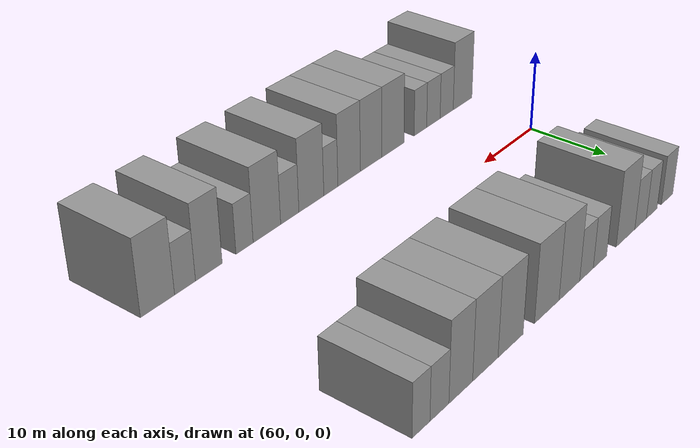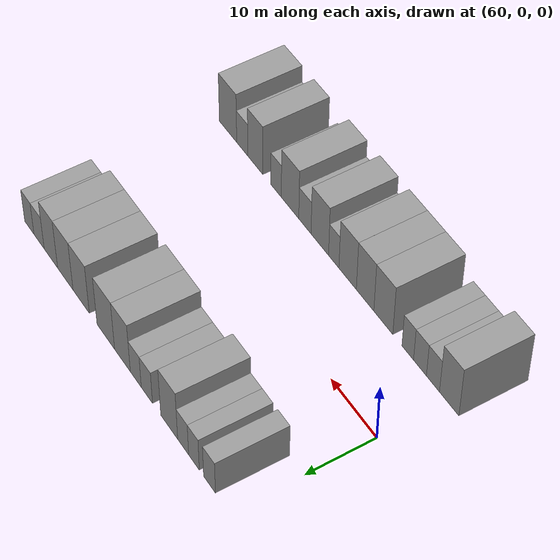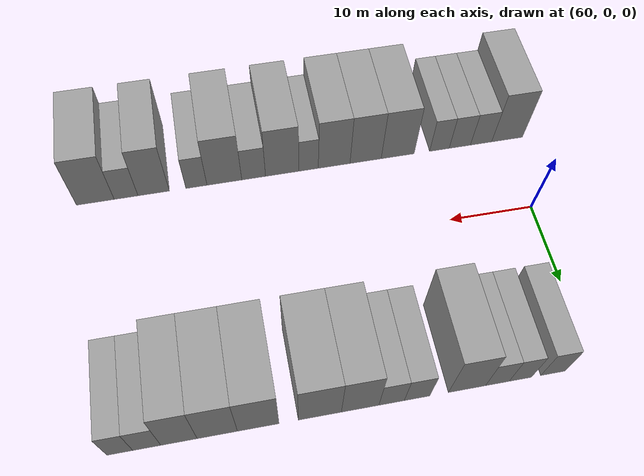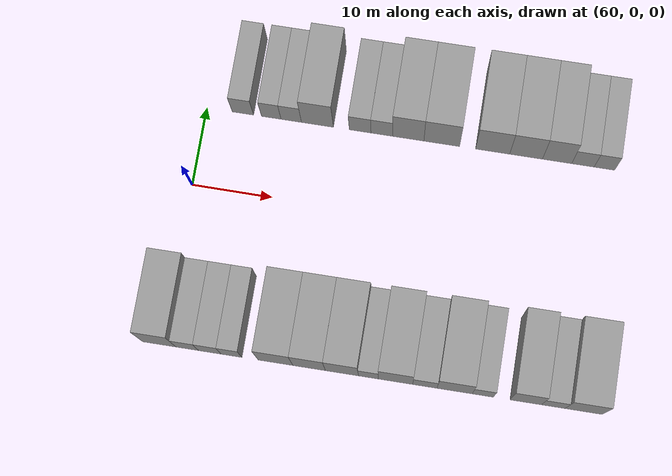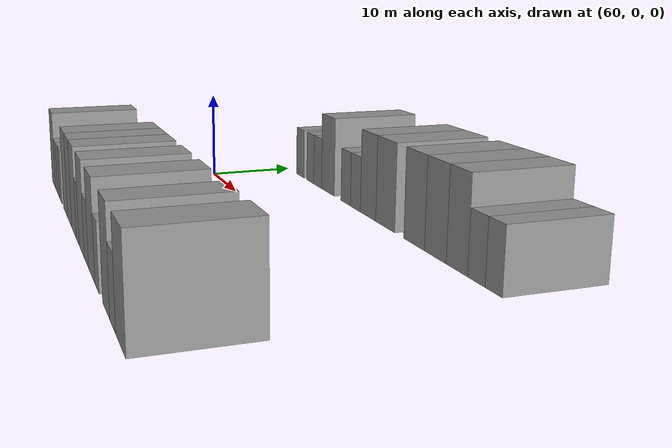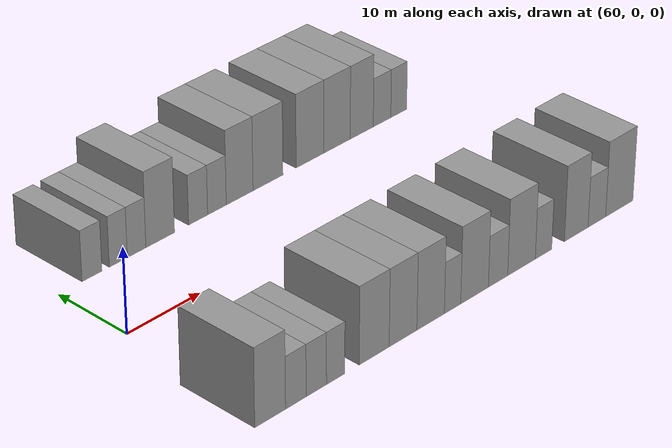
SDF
<sdf version="1.6">
 <world name="default">
  <model name="building_15">
   <static>1</static>
   <pose>64.5397 15.0000 0 0.000000 0.000000 1.570796</pose>
   <link name="link">
    <pose>0 0 3.00 0 0 0</pose>
    <collision name="collision"><geometry><box><size>10.0000 2.7004 6.0000</size></box></geometry></collision>
    <visual name="visual">
     <cast_shadows>0</cast_shadows>
     <geometry><box><size>10.0000 2.7004 6.0000</size></box></geometry>
     <material>
      <script>
       <uri>model://grey_wall/materials/scripts</uri>
       <uri>model://grey_wall/materials/textures</uri>
       <name>vrc/grey_wall</name>
      </script>
     </material>
    </visual>
   </link>
  </model>
  <model name="building_16">
   <static>1</static>
   <pose>68.1228 15.0000 0 0.000000 0.000000 1.570796</pose>
   <link name="link">
    <pose>0 0 3.00 0 0 0</pose>
    <collision name="collision"><geometry><box><size>10.0000 2.4657 6.0000</size></box></geometry></collision>
    <visual name="visual">
     <cast_shadows>0</cast_shadows>
     <geometry><box><size>10.0000 2.4657 6.0000</size></box></geometry>
     <material>
      <script>
       <uri>model://grey_wall/materials/scripts</uri>
       <uri>model://grey_wall/materials/textures</uri>
       <name>vrc/grey_wall</name>
      </script>
     </material>
    </visual>
   </link>
  </model>
  <model name="building_17">
   <static>1</static>
   <pose>70.6452 15.0000 0 0.000000 0.000000 1.570796</pose>
   <link name="link">
    <pose>0 0 3.00 0 0 0</pose>
    <collision name="collision"><geometry><box><size>10.0000 2.5791 6.0000</size></box></geometry></collision>
    <visual name="visual">
     <cast_shadows>0</cast_shadows>
     <geometry><box><size>10.0000 2.5791 6.0000</size></box></geometry>
     <material>
      <script>
       <uri>model://grey_wall/materials/scripts</uri>
       <uri>model://grey_wall/materials/textures</uri>
       <name>vrc/grey_wall</name>
      </script>
     </material>
    </visual>
   </link>
  </model>
  <model name="building_18">
   <static>1</static>
   <pose>73.9491 15.0000 0 0.000000 0.000000 1.570796</pose>
   <link name="link">
    <pose>0 0 4.50 0 0 0</pose>
    <collision name="collision"><geometry><box><size>10.0000 4.0286 9.0000</size></box></geometry></collision>
    <visual name="visual">
     <cast_shadows>0</cast_shadows>
     <geometry><box><size>10.0000 4.0286 9.0000</size></box></geometry>
     <material>
      <script>
       <uri>model://grey_wall/materials/scripts</uri>
       <uri>model://grey_wall/materials/textures</uri>
       <name>vrc/grey_wall</name>
      </script>
     </material>
    </visual>
   </link>
  </model>
  <model name="building_19">
   <static>1</static>
   <pose>79.3284 15.0000 0 0.000000 0.000000 1.570796</pose>
   <link name="link">
    <pose>0 0 3.00 0 0 0</pose>
    <collision name="collision"><geometry><box><size>10.0000 2.7300 6.0000</size></box></geometry></collision>
    <visual name="visual">
     <cast_shadows>0</cast_shadows>
     <geometry><box><size>10.0000 2.7300 6.0000</size></box></geometry>
     <material>
      <script>
       <uri>model://grey_wall/materials/scripts</uri>
       <uri>model://grey_wall/materials/textures</uri>
       <name>vrc/grey_wall</name>
      </script>
     </material>
    </visual>
   </link>
  </model>
  <model name="building_20">
   <static>1</static>
   <pose>82.0445 15.0000 0 0.000000 0.000000 1.570796</pose>
   <link name="link">
    <pose>0 0 3.00 0 0 0</pose>
    <collision name="collision"><geometry><box><size>10.0000 2.7021 6.0000</size></box></geometry></collision>
    <visual name="visual">
     <cast_shadows>0</cast_shadows>
     <geometry><box><size>10.0000 2.7021 6.0000</size></box></geometry>
     <material>
      <script>
       <uri>model://grey_wall/materials/scripts</uri>
       <uri>model://grey_wall/materials/textures</uri>
       <name>vrc/grey_wall</name>
      </script>
     </material>
    </visual>
   </link>
  </model>
  <model name="building_21">
   <static>1</static>
   <pose>85.3691 15.0000 0 0.000000 0.000000 1.570796</pose>
   <link name="link">
    <pose>0 0 4.50 0 0 0</pose>
    <collision name="collision"><geometry><box><size>10.0000 3.9471 9.0000</size></box></geometry></collision>
    <visual name="visual">
     <cast_shadows>0</cast_shadows>
     <geometry><box><size>10.0000 3.9471 9.0000</size></box></geometry>
     <material>
      <script>
       <uri>model://grey_wall/materials/scripts</uri>
       <uri>model://grey_wall/materials/textures</uri>
       <name>vrc/grey_wall</name>
      </script>
     </material>
    </visual>
   </link>
  </model>
  <model name="building_22">
   <static>1</static>
   <pose>89.5817 15.0000 0 0.000000 0.000000 1.570796</pose>
   <link name="link">
    <pose>0 0 4.50 0 0 0</pose>
    <collision name="collision"><geometry><box><size>10.0000 4.4781 9.0000</size></box></geometry></collision>
    <visual name="visual">
     <cast_shadows>0</cast_shadows>
     <geometry><box><size>10.0000 4.4781 9.0000</size></box></geometry>
     <material>
      <script>
       <uri>model://grey_wall/materials/scripts</uri>
       <uri>model://grey_wall/materials/textures</uri>
       <name>vrc/grey_wall</name>
      </script>
     </material>
    </visual>
   </link>
  </model>
  <model name="building_23">
   <static>1</static>
   <pose>95.9513 15.0000 0 0.000000 0.000000 1.570796</pose>
   <link name="link">
    <pose>0 0 4.50 0 0 0</pose>
    <collision name="collision"><geometry><box><size>10.0000 4.2611 9.0000</size></box></geometry></collision>
    <visual name="visual">
     <cast_shadows>0</cast_shadows>
     <geometry><box><size>10.0000 4.2611 9.0000</size></box></geometry>
     <material>
      <script>
       <uri>model://grey_wall/materials/scripts</uri>
       <uri>model://grey_wall/materials/textures</uri>
       <name>vrc/grey_wall</name>
      </script>
     </material>
    </visual>
   </link>
  </model>
  <model name="building_24">
   <static>1</static>
   <pose>100.1310 15.0000 0 0.000000 0.000000 1.570796</pose>
   <link name="link">
    <pose>0 0 4.50 0 0 0</pose>
    <collision name="collision"><geometry><box><size>10.0000 4.0983 9.0000</size></box></geometry></collision>
    <visual name="visual">
     <cast_shadows>0</cast_shadows>
     <geometry><box><size>10.0000 4.0983 9.0000</size></box></geometry>
     <material>
      <script>
       <uri>model://grey_wall/materials/scripts</uri>
       <uri>model://grey_wall/materials/textures</uri>
       <name>vrc/grey_wall</name>
      </script>
     </material>
    </visual>
   </link>
  </model>
  <model name="building_25">
   <static>1</static>
   <pose>104.0064 15.0000 0 0.000000 0.000000 1.570796</pose>
   <link name="link">
    <pose>0 0 4.50 0 0 0</pose>
    <collision name="collision"><geometry><box><size>10.0000 3.6526 9.0000</size></box></geometry></collision>
    <visual name="visual">
     <cast_shadows>0</cast_shadows>
     <geometry><box><size>10.0000 3.6526 9.0000</size></box></geometry>
     <material>
      <script>
       <uri>model://grey_wall/materials/scripts</uri>
       <uri>model://grey_wall/materials/textures</uri>
       <name>vrc/grey_wall</name>
      </script>
     </material>
    </visual>
   </link>
  </model>
  <model name="building_26">
   <static>1</static>
   <pose>107.2340 15.0000 0 0.000000 0.000000 1.570796</pose>
   <link name="link">
    <pose>0 0 3.00 0 0 0</pose>
    <collision name="collision"><geometry><box><size>10.0000 2.8026 6.0000</size></box></geometry></collision>
    <visual name="visual">
     <cast_shadows>0</cast_shadows>
     <geometry><box><size>10.0000 2.8026 6.0000</size></box></geometry>
     <material>
      <script>
       <uri>model://grey_wall/materials/scripts</uri>
       <uri>model://grey_wall/materials/textures</uri>
       <name>vrc/grey_wall</name>
      </script>
     </material>
    </visual>
   </link>
  </model>
  <model name="building_27">
   <static>1</static>
   <pose>109.9182 15.0000 0 0.000000 0.000000 1.570796</pose>
   <link name="link">
    <pose>0 0 3.00 0 0 0</pose>
    <collision name="collision"><geometry><box><size>10.0000 2.5657 6.0000</size></box></geometry></collision>
    <visual name="visual">
     <cast_shadows>0</cast_shadows>
     <geometry><box><size>10.0000 2.5657 6.0000</size></box></geometry>
     <material>
      <script>
       <uri>model://grey_wall/materials/scripts</uri>
       <uri>model://grey_wall/materials/textures</uri>
       <name>vrc/grey_wall</name>
      </script>
     </material>
    </visual>
   </link>
  </model>
  <model name="building_70">
   <static>1</static>
   <pose>59.6836 -15.0000 0 0.000000 0.000000 1.570796</pose>
   <link name="link">
    <pose>0 0 4.50 0 0 0</pose>
    <collision name="collision"><geometry><box><size>10.0000 4.0765 9.0000</size></box></geometry></collision>
    <visual name="visual">
     <cast_shadows>0</cast_shadows>
     <geometry><box><size>10.0000 4.0765 9.0000</size></box></geometry>
     <material>
      <script>
       <uri>model://grey_wall/materials/scripts</uri>
       <uri>model://grey_wall/materials/textures</uri>
       <name>vrc/grey_wall</name>
      </script>
     </material>
    </visual>
   </link>
  </model>
  <model name="building_71">
   <static>1</static>
   <pose>63.1072 -15.0000 0 0.000000 0.000000 1.570796</pose>
   <link name="link">
    <pose>0 0 3.00 0 0 0</pose>
    <collision name="collision"><geometry><box><size>10.0000 2.7708 6.0000</size></box></geometry></collision>
    <visual name="visual">
     <cast_shadows>0</cast_shadows>
     <geometry><box><size>10.0000 2.7708 6.0000</size></box></geometry>
     <material>
      <script>
       <uri>model://grey_wall/materials/scripts</uri>
       <uri>model://grey_wall/materials/textures</uri>
       <name>vrc/grey_wall</name>
      </script>
     </material>
    </visual>
   </link>
  </model>
  <model name="building_72">
   <static>1</static>
   <pose>65.8758 -15.0000 0 0.000000 0.000000 1.570796</pose>
   <link name="link">
    <pose>0 0 3.00 0 0 0</pose>
    <collision name="collision"><geometry><box><size>10.0000 2.7663 6.0000</size></box></geometry></collision>
    <visual name="visual">
     <cast_shadows>0</cast_shadows>
     <geometry><box><size>10.0000 2.7663 6.0000</size></box></geometry>
     <material>
      <script>
       <uri>model://grey_wall/materials/scripts</uri>
       <uri>model://grey_wall/materials/textures</uri>
       <name>vrc/grey_wall</name>
      </script>
     </material>
    </visual>
   </link>
  </model>
  <model name="building_73">
   <static>1</static>
   <pose>68.5215 -15.0000 0 0.000000 0.000000 1.570796</pose>
   <link name="link">
    <pose>0 0 3.00 0 0 0</pose>
    <collision name="collision"><geometry><box><size>10.0000 2.5252 6.0000</size></box></geometry></collision>
    <visual name="visual">
     <cast_shadows>0</cast_shadows>
     <geometry><box><size>10.0000 2.5252 6.0000</size></box></geometry>
     <material>
      <script>
       <uri>model://grey_wall/materials/scripts</uri>
       <uri>model://grey_wall/materials/textures</uri>
       <name>vrc/grey_wall</name>
      </script>
     </material>
    </visual>
   </link>
  </model>
  <model name="building_74">
   <static>1</static>
   <pose>73.8981 -15.0000 0 0.000000 0.000000 1.570796</pose>
   <link name="link">
    <pose>0 0 4.50 0 0 0</pose>
    <collision name="collision"><geometry><box><size>10.0000 4.2282 9.0000</size></box></geometry></collision>
    <visual name="visual">
     <cast_shadows>0</cast_shadows>
     <geometry><box><size>10.0000 4.2282 9.0000</size></box></geometry>
     <material>
      <script>
       <uri>model://grey_wall/materials/scripts</uri>
       <uri>model://grey_wall/materials/textures</uri>
       <name>vrc/grey_wall</name>
      </script>
     </material>
    </visual>
   </link>
  </model>
  <model name="building_75">
   <static>1</static>
   <pose>77.9953 -15.0000 0 0.000000 0.000000 1.570796</pose>
   <link name="link">
    <pose>0 0 4.50 0 0 0</pose>
    <collision name="collision"><geometry><box><size>10.0000 3.9661 9.0000</size></box></geometry></collision>
    <visual name="visual">
     <cast_shadows>0</cast_shadows>
     <geometry><box><size>10.0000 3.9661 9.0000</size></box></geometry>
     <material>
      <script>
       <uri>model://grey_wall/materials/scripts</uri>
       <uri>model://grey_wall/materials/textures</uri>
       <name>vrc/grey_wall</name>
      </script>
     </material>
    </visual>
   </link>
  </model>
  <model name="building_76">
   <static>1</static>
   <pose>81.9830 -15.0000 0 0.000000 0.000000 1.570796</pose>
   <link name="link">
    <pose>0 0 4.50 0 0 0</pose>
    <collision name="collision"><geometry><box><size>10.0000 4.0092 9.0000</size></box></geometry></collision>
    <visual name="visual">
     <cast_shadows>0</cast_shadows>
     <geometry><box><size>10.0000 4.0092 9.0000</size></box></geometry>
     <material>
      <script>
       <uri>model://grey_wall/materials/scripts</uri>
       <uri>model://grey_wall/materials/textures</uri>
       <name>vrc/grey_wall</name>
      </script>
     </material>
    </visual>
   </link>
  </model>
  <model name="building_77">
   <static>1</static>
   <pose>85.1960 -15.0000 0 0.000000 0.000000 1.570796</pose>
   <link name="link">
    <pose>0 0 3.00 0 0 0</pose>
    <collision name="collision"><geometry><box><size>10.0000 2.4168 6.0000</size></box></geometry></collision>
    <visual name="visual">
     <cast_shadows>0</cast_shadows>
     <geometry><box><size>10.0000 2.4168 6.0000</size></box></geometry>
     <material>
      <script>
       <uri>model://grey_wall/materials/scripts</uri>
       <uri>model://grey_wall/materials/textures</uri>
       <name>vrc/grey_wall</name>
      </script>
     </material>
    </visual>
   </link>
  </model>
  <model name="building_78">
   <static>1</static>
   <pose>88.4814 -15.0000 0 0.000000 0.000000 1.570796</pose>
   <link name="link">
    <pose>0 0 4.50 0 0 0</pose>
    <collision name="collision"><geometry><box><size>10.0000 4.1541 9.0000</size></box></geometry></collision>
    <visual name="visual">
     <cast_shadows>0</cast_shadows>
     <geometry><box><size>10.0000 4.1541 9.0000</size></box></geometry>
     <material>
      <script>
       <uri>model://grey_wall/materials/scripts</uri>
       <uri>model://grey_wall/materials/textures</uri>
       <name>vrc/grey_wall</name>
      </script>
     </material>
    </visual>
   </link>
  </model>
  <model name="building_79">
   <static>1</static>
   <pose>92.0271 -15.0000 0 0.000000 0.000000 1.570796</pose>
   <link name="link">
    <pose>0 0 3.00 0 0 0</pose>
    <collision name="collision"><geometry><box><size>10.0000 2.9373 6.0000</size></box></geometry></collision>
    <visual name="visual">
     <cast_shadows>0</cast_shadows>
     <geometry><box><size>10.0000 2.9373 6.0000</size></box></geometry>
     <material>
      <script>
       <uri>model://grey_wall/materials/scripts</uri>
       <uri>model://grey_wall/materials/textures</uri>
       <name>vrc/grey_wall</name>
      </script>
     </material>
    </visual>
   </link>
  </model>
  <model name="building_80">
   <static>1</static>
   <pose>95.6276 -15.0000 0 0.000000 0.000000 1.570796</pose>
   <link name="link">
    <pose>0 0 4.50 0 0 0</pose>
    <collision name="collision"><geometry><box><size>10.0000 4.2637 9.0000</size></box></geometry></collision>
    <visual name="visual">
     <cast_shadows>0</cast_shadows>
     <geometry><box><size>10.0000 4.2637 9.0000</size></box></geometry>
     <material>
      <script>
       <uri>model://grey_wall/materials/scripts</uri>
       <uri>model://grey_wall/materials/textures</uri>
       <name>vrc/grey_wall</name>
      </script>
     </material>
    </visual>
   </link>
  </model>
  <model name="building_81">
   <static>1</static>
   <pose>99.0463 -15.0000 0 0.000000 0.000000 1.570796</pose>
   <link name="link">
    <pose>0 0 3.00 0 0 0</pose>
    <collision name="collision"><geometry><box><size>10.0000 2.5738 6.0000</size></box></geometry></collision>
    <visual name="visual">
     <cast_shadows>0</cast_shadows>
     <geometry><box><size>10.0000 2.5738 6.0000</size></box></geometry>
     <material>
      <script>
       <uri>model://grey_wall/materials/scripts</uri>
       <uri>model://grey_wall/materials/textures</uri>
       <name>vrc/grey_wall</name>
      </script>
     </material>
    </visual>
   </link>
  </model>
  <model name="building_82">
   <static>1</static>
   <pose>104.2264 -15.0000 0 0.000000 0.000000 1.570796</pose>
   <link name="link">
    <pose>0 0 4.50 0 0 0</pose>
    <collision name="collision"><geometry><box><size>10.0000 3.7864 9.0000</size></box></geometry></collision>
    <visual name="visual">
     <cast_shadows>0</cast_shadows>
     <geometry><box><size>10.0000 3.7864 9.0000</size></box></geometry>
     <material>
      <script>
       <uri>model://grey_wall/materials/scripts</uri>
       <uri>model://grey_wall/materials/textures</uri>
       <name>vrc/grey_wall</name>
      </script>
     </material>
    </visual>
   </link>
  </model>
  <model name="building_83">
   <static>1</static>
   <pose>107.5464 -15.0000 0 0.000000 0.000000 1.570796</pose>
   <link name="link">
    <pose>0 0 3.00 0 0 0</pose>
    <collision name="collision"><geometry><box><size>10.0000 2.8536 6.0000</size></box></geometry></collision>
    <visual name="visual">
     <cast_shadows>0</cast_shadows>
     <geometry><box><size>10.0000 2.8536 6.0000</size></box></geometry>
     <material>
      <script>
       <uri>model://grey_wall/materials/scripts</uri>
       <uri>model://grey_wall/materials/textures</uri>
       <name>vrc/grey_wall</name>
      </script>
     </material>
    </visual>
   </link>
  </model>
  <model name="building_84">
   <static>1</static>
   <pose>111.2148 -15.0000 0 0.000000 0.000000 1.570796</pose>
   <link name="link">
    <pose>0 0 4.50 0 0 0</pose>
    <collision name="collision"><geometry><box><size>10.0000 4.4832 9.0000</size></box></geometry></collision>
    <visual name="visual">
     <cast_shadows>0</cast_shadows>
     <geometry><box><size>10.0000 4.4832 9.0000</size></box></geometry>
     <material>
      <script>
       <uri>model://grey_wall/materials/scripts</uri>
       <uri>model://grey_wall/materials/textures</uri>
       <name>vrc/grey_wall</name>
      </script>
     </material>
    </visual>
   </link>
  </model>
 </world>
</sdf>
